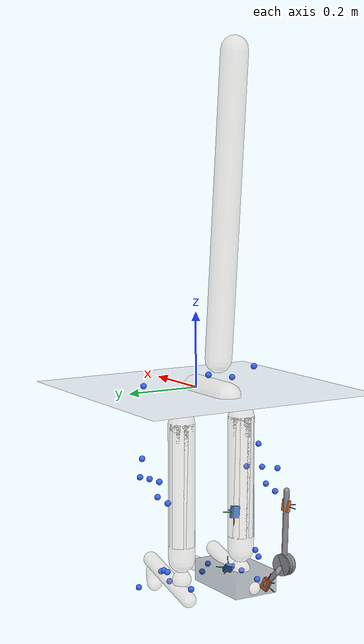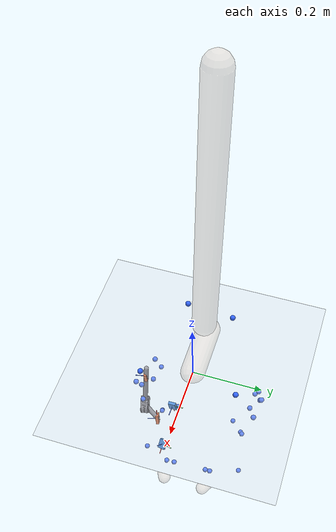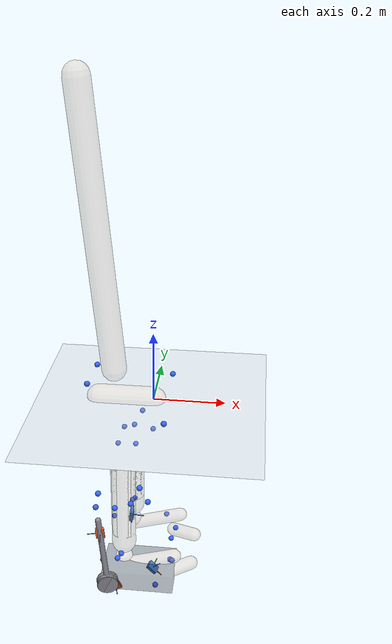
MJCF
<mujoco model="AB12">
  <compiler angle="radian" autolimits="true"/>
  <option timestep="0.005" gravity="0 0 -9.81"><flag contact="disable"/></option>
  <visual><global offwidth="1600" offheight="1200"/>
    <headlight ambient="0.55 0.55 0.55" diffuse="0.6 0.6 0.6"/></visual>
  <default><joint limited="false" damping="0"/><geom contype="0" conaffinity="0"/></default>
  <asset>
    <texture name="grid" type="2d" builtin="checker" rgb1="0.75 0.77 0.8" rgb2="0.85 0.87 0.9" width="512" height="512"/>
    <material name="grid" texture="grid" texrepeat="2 2" texuniform="true"/>
    <material name="skin" rgba="0.85 0.72 0.62 0.28"/>
  </asset>
  <worldbody>
    <light pos="0 0 4" dir="0 0 -1"/>
    <geom name="floor" type="plane" size="0 0 0.05" material="grid"/>
    <body name="pelvis" pos="0 0 0" quat="1 0 0 0">
      <joint name="pelvis_tx" type="slide" axis="1 0 0"/>
      <joint name="pelvis_ty" type="slide" axis="0 0 1"/>
      <joint name="pelvis_tz" type="slide" axis="0 -1 0"/>
      <joint name="pelvis_tilt" type="hinge" axis="0 -1 0"/>
      <joint name="pelvis_list" type="hinge" axis="1 0 0"/>
      <joint name="pelvis_rotation" type="hinge" axis="0 0 1"/>
      <inertial pos="-0.07715443 0 0" mass="14.0995" diaginertia="0.1409953 0.1409953 0.1409953"/>
      <geom type="capsule" fromto="0 0 0 -0.15430886 0 0" size="0.035" material="skin" mass="0"/>
      <site name="m_R_ASIS" pos="0.043983558 -0.14042451 0.0079280897" size="0.008" rgba="0.2 0.4 1 1" group="2"/>
      <site name="m_L_ASIS" pos="0.03976202 0.13610906 0.0093968078" size="0.008" rgba="0.2 0.4 1 1" group="2"/>
      <site name="m_L_PSIS" pos="-0.17033941 0.067238765 0.063340387" size="0.008" rgba="0.2 0.4 1 1" group="2"/>
      <site name="m_R_PSIS" pos="-0.17360342 -0.066975278 0.074198907" size="0.008" rgba="0.2 0.4 1 1" group="2"/>
      <body name="femur_r" pos="-0.07715443 -0.091122983 -0.072134482" quat="1 0 0 0">
        <joint name="hip_flexion_r" type="hinge" axis="0 -1 0"/>
        <joint name="hip_adduction_r" type="hinge" axis="1 0 0"/>
        <joint name="hip_rotation_r" type="hinge" axis="0 0 1"/>
        <inertial pos="0 0 -0.16202435" mass="11.1357" diaginertia="0.11135719 0.11135719 0.11135719"/>
        <geom type="capsule" fromto="0 0 0 0 0 -0.3240487" size="0.035" material="skin" mass="0"/>
        <site name="m_R_Thigh_Upper" pos="0.061456934 -0.096307225 -0.098305812" size="0.008" rgba="0.2 0.4 1 1" group="2"/>
        <site name="m_R_Thigh_Front" pos="0.080273714 -0.070749892 -0.16125976" size="0.008" rgba="0.2 0.4 1 1" group="2"/>
        <site name="m_R_Thigh_Rear" pos="0.035883593 -0.091401105 -0.15639493" size="0.008" rgba="0.2 0.4 1 1" group="2"/>
        <site name="m_R_Knee_Lat" pos="-0.0018658824 -0.045486738 -0.37072767" size="0.008" rgba="0.2 0.4 1 1" group="2"/>
        <body name="tibia_r" pos="0 0 0" quat="1 0 0 0">
<geom name="gt_shank_axis_x" type="capsule" size="0.0012" fromto="0.02330 0.00370 -0.26510 0.02142 0.00816 -0.29976" rgba="1 0.1 0.1 1" contype="0" conaffinity="0" mass="0"/>
<geom name="gt_shank_axis_y" type="capsule" size="0.0012" fromto="0.02330 0.00370 -0.26510 0.02447 0.03840 -0.26070" rgba="0.1 0.8 0.1 1" contype="0" conaffinity="0" mass="0"/>
<geom name="gt_shank_axis_z" type="capsule" size="0.0012" fromto="0.02330 0.00370 -0.26510 0.05823 0.00278 -0.26712" rgba="0.1 0.3 1 1" contype="0" conaffinity="0" mass="0"/>
<geom name="exo_shank_axis_x" type="capsule" size="0.0012" fromto="-0.04844 -0.11237 -0.24755 -0.05066 -0.11583 -0.21279" rgba="1 0.1 0.1 1" contype="0" conaffinity="0" mass="0"/>
<geom name="exo_shank_axis_y" type="capsule" size="0.0012" fromto="-0.04844 -0.11237 -0.24755 -0.08287 -0.11802 -0.25030" rgba="0.1 0.8 0.1 1" contype="0" conaffinity="0" mass="0"/>
<geom name="exo_shank_axis_z" type="capsule" size="0.0012" fromto="-0.04844 -0.11237 -0.24755 -0.04256 -0.14674 -0.25059" rgba="0.1 0.3 1 1" contype="0" conaffinity="0" mass="0"/>
<geom name="encoder_shank" type="cylinder" size="0.03 0.012" fromto="-0.02795 -0.13179 -0.41510 -0.03245 -0.10821 -0.41510" rgba="0.55 0.55 0.58 1" contype="0" conaffinity="0" mass="0"/>
<geom name="strut_shank" type="capsule" size="0.008" fromto="-0.03020 -0.12000 -0.41510 -0.05300 -0.11047 -0.20566" rgba="0.55 0.55 0.58 1" contype="0" conaffinity="0" mass="0"/>
          <joint name="knee_r_translation1" type="slide" axis="1 0 0"/>
          <joint name="knee_r_translation2" type="slide" axis="0 0 1"/>
          <joint name="knee_angle_r" type="hinge" axis="0 -1 0"/>
          <inertial pos="0 0 -0.18022266" mass="4.43865" diaginertia="0.044386521 0.044386521 0.044386521"/>
          <geom type="capsule" fromto="0 0 0 0 0 -0.36044532" size="0.035" material="skin" mass="0"/>
          <site name="m_R_Shank_Upper" pos="-0.056617927 -0.077858928 -0.13979234" size="0.008" rgba="0.2 0.4 1 1" group="2"/>
          <site name="m_R_Shank_Front" pos="-0.012494069 -0.07136398 -0.19007319" size="0.008" rgba="0.2 0.4 1 1" group="2"/>
          <site name="m_R_Shank_Rear" pos="-0.067992096 -0.063246749 -0.19796673" size="0.008" rgba="0.2 0.4 1 1" group="2"/>
          <site name="m_R_Ankle_Lat" pos="-0.012331908 -0.048676994 -0.38698229" size="0.008" rgba="0.2 0.4 1 1" group="2"/>
          <site name="gt_shank_imu" type="box" size="0.016 0.012 0.005" pos="0.0233 0.0037 -0.2651" quat="0.68558164 0.055505595 0.72506702 0.034274681" rgba="0.16 0.47 0.84 1" group="1"/>
          <site name="exo_shank_imu" type="box" size="0.016 0.012 0.005" pos="-0.04844 -0.112374 -0.247546" quat="0.41486667 0.54424053 -0.49726016 0.53331063" rgba="0.92 0.41 0.20 1" group="1"/>
          <body name="talus_r" pos="0 0 -0.41508164" quat="1 0 0 0">
            <joint name="ankle_angle_r" type="hinge" axis="-0.10501355 -0.97912632 -0.17402245"/>
            <inertial pos="0 0 0" mass="0.119721" diaginertia="0.0011972089 0.0011972089 0.0011972089"/>
            <geom type="sphere" size="0.025" material="skin" mass="0"/>
            <body name="calcn_r" pos="-0.047077981 -0.0076452247 -0.040494593" quat="1 0 0 0">
<geom name="gt_foot_axis_x" type="capsule" size="0.0012" fromto="0.13330 -0.00930 0.01720 0.15877 -0.01163 -0.00669" rgba="1 0.1 0.1 1" contype="0" conaffinity="0" mass="0"/>
<geom name="gt_foot_axis_y" type="capsule" size="0.0012" fromto="0.13330 -0.00930 0.01720 0.14217 0.02398 0.02340" rgba="0.1 0.8 0.1 1" contype="0" conaffinity="0" mass="0"/>
<geom name="gt_foot_axis_z" type="capsule" size="0.0012" fromto="0.13330 -0.00930 0.01720 0.15561 -0.01987 0.04201" rgba="0.1 0.3 1 1" contype="0" conaffinity="0" mass="0"/>
<geom name="exo_foot_axis_x" type="capsule" size="0.0012" fromto="0.03192 -0.06352 -0.01095 0.01898 -0.07073 0.02076" rgba="1 0.1 0.1 1" contype="0" conaffinity="0" mass="0"/>
<geom name="exo_foot_axis_y" type="capsule" size="0.0012" fromto="0.03192 -0.06352 -0.01095 0.00060 -0.06993 -0.02519" rgba="0.1 0.8 0.1 1" contype="0" conaffinity="0" mass="0"/>
<geom name="exo_foot_axis_z" type="capsule" size="0.0012" fromto="0.03192 -0.06352 -0.01095 0.04066 -0.09717 -0.01503" rgba="0.1 0.3 1 1" contype="0" conaffinity="0" mass="0"/>
<geom name="encoder_foot" type="cylinder" size="0.03 0.012" fromto="0.02047 -0.12384 0.03982 0.01333 -0.10096 0.04118" rgba="0.55 0.55 0.58 1" contype="0" conaffinity="0" mass="0"/>
<geom name="strut_foot" type="capsule" size="0.008" fromto="0.01690 -0.11240 0.04050 0.03192 -0.06352 -0.01095" rgba="0.55 0.55 0.58 1" contype="0" conaffinity="0" mass="0"/>
<geom name="shoe" type="box" pos="0.09404 -0.00528 0.00813" size="0.10311 0.06386 0.03000" rgba="0.15 0.15 0.18 0.35" contype="0" conaffinity="0" mass="0"/>
              <joint name="subtalar_angle_r" type="hinge" axis="0.78717961 0.12094949 0.60474746"/>
              <inertial pos="0.097795149 0 0.029338545" mass="1.49651" diaginertia="0.014965112 0.014965112 0.014965112"/>
              <geom type="capsule" fromto="0 0 0 0.1955903 0 0.058677089" size="0.02" material="skin" mass="0"/>
              <site name="m_R_Heel" pos="-0.016078069 -0.0034835804 0.026161224" size="0.008" rgba="0.2 0.4 1 1" group="2"/>
              <site name="m_R_Toe_Lat" pos="0.14725056 -0.060948239 -0.0018715595" size="0.008" rgba="0.2 0.4 1 1" group="2"/>
              <site name="m_R_Toe_Med" pos="0.17908964 0.046779981 0.003740019" size="0.008" rgba="0.2 0.4 1 1" group="2"/>
              <site name="m_R_Toe_Tip" pos="0.18715187 0.023664384 0.020267258" size="0.008" rgba="0.2 0.4 1 1" group="2"/>
              <site name="gt_foot_imu" type="box" size="0.016 0.012 0.005" pos="0.1333 -0.0093 0.0172" quat="0.92028364 0.13012564 0.35858456 -0.086962366" rgba="0.16 0.47 0.84 1" group="1"/>
              <site name="exo_foot_imu" type="box" size="0.016 0.012 0.005" pos="0.031924 -0.063524 -0.010954" quat="0.28756144 0.4821127 -0.57080915 0.59921004" rgba="0.92 0.41 0.20 1" group="1"/>
              <body name="toes_r" pos="0.17485773 -0.0010561876 -0.001955903" quat="1 0 0 0">
                <joint name="mtp_angle_r" type="hinge" axis="-0.5809544 -0.81393611 0"/>
                <inertial pos="0.033837122 0.017114151 0.0058677089" mass="0.259315" diaginertia="0.0025931546 0.0025931546 0.0025931546"/>
                <geom type="capsule" fromto="0 0 0 0.067674243 0.034228302 0.011735418" size="0.02" material="skin" mass="0"/>
              </body>
            </body>
          </body>
        </body>
      </body>
      <body name="femur_l" pos="-0.07715443 0.091122983 -0.072134482" quat="1 0 0 0">
        <joint name="hip_flexion_l" type="hinge" axis="0 -1 0"/>
        <joint name="hip_adduction_l" type="hinge" axis="-1 0 0"/>
        <joint name="hip_rotation_l" type="hinge" axis="0 0 -1"/>
        <inertial pos="0 0 -0.16202435" mass="11.1357" diaginertia="0.11135719 0.11135719 0.11135719"/>
        <geom type="capsule" fromto="0 0 0 0 0 -0.3240487" size="0.035" material="skin" mass="0"/>
        <site name="m_L_Thigh_Upper" pos="0.018322348 0.10535582 -0.085251929" size="0.008" rgba="0.2 0.4 1 1" group="2"/>
        <site name="m_L_Thigh_Front" pos="0.052304428 0.093149921 -0.14183419" size="0.008" rgba="0.2 0.4 1 1" group="2"/>
        <site name="m_L_Thigh_Rear" pos="-0.0069196455 0.098419093 -0.13371517" size="0.008" rgba="0.2 0.4 1 1" group="2"/>
        <site name="m_L_Knee_Lat" pos="-0.0017085929 0.05416158 -0.38128089" size="0.008" rgba="0.2 0.4 1 1" group="2"/>
        <body name="tibia_l" pos="0 0 0" quat="1 0 0 0">
          <joint name="knee_l_translation1" type="slide" axis="1 0 0"/>
          <joint name="knee_l_translation2" type="slide" axis="0 0 1"/>
          <joint name="knee_angle_l" type="hinge" axis="0 -1 0"/>
          <inertial pos="0 0 -0.18022266" mass="4.43865" diaginertia="0.044386521 0.044386521 0.044386521"/>
          <geom type="capsule" fromto="0 0 0 0 0 -0.36044532" size="0.035" material="skin" mass="0"/>
          <site name="m_L_Shank_Upper" pos="-0.036793303 0.086908038 -0.13628313" size="0.008" rgba="0.2 0.4 1 1" group="2"/>
          <site name="m_L_Shank_Front" pos="0.00065718824 0.071011716 -0.18609703" size="0.008" rgba="0.2 0.4 1 1" group="2"/>
          <site name="m_L_Shank_Rear" pos="-0.055466431 0.073235348 -0.18973282" size="0.008" rgba="0.2 0.4 1 1" group="2"/>
          <site name="m_L_Ankle_Lat" pos="-0.0088468919 0.048177175 -0.38478184" size="0.008" rgba="0.2 0.4 1 1" group="2"/>
          <body name="talus_l" pos="0 0 -0.41508164" quat="1 0 0 0">
            <joint name="ankle_angle_l" type="hinge" axis="0.10501355 -0.97912632 0.17402245"/>
            <inertial pos="0 0 0" mass="0.119721" diaginertia="0.0011972089 0.0011972089 0.0011972089"/>
            <geom type="sphere" size="0.025" material="skin" mass="0"/>
            <body name="calcn_l" pos="-0.047077981 0.0076452247 -0.040494593" quat="1 0 0 0">
              <joint name="subtalar_angle_l" type="hinge" axis="-0.78717961 0.12094949 -0.60474746"/>
              <inertial pos="0.097795149 0 0.029338545" mass="1.49651" diaginertia="0.014965112 0.014965112 0.014965112"/>
              <geom type="capsule" fromto="0 0 0 0.1955903 0 0.058677089" size="0.02" material="skin" mass="0"/>
              <site name="m_L_Heel" pos="-0.014810252 0.0011010352 0.032700384" size="0.008" rgba="0.2 0.4 1 1" group="2"/>
              <site name="m_L_Toe_Lat" pos="0.14557215 0.065347425 0.0052133203" size="0.008" rgba="0.2 0.4 1 1" group="2"/>
              <site name="m_L_Toe_Med" pos="0.1717439 -0.043125119 -0.003464189" size="0.008" rgba="0.2 0.4 1 1" group="2"/>
              <site name="m_L_Toe_Tip" pos="0.18351315 -0.024331829 0.023826383" size="0.008" rgba="0.2 0.4 1 1" group="2"/>
              <body name="toes_l" pos="0.17485773 0.0010561876 -0.001955903" quat="1 0 0 0">
                <joint name="mtp_angle_l" type="hinge" axis="0.5809544 -0.81393611 0"/>
                <inertial pos="0.033837122 -0.017114151 0.0058677089" mass="0.259315" diaginertia="0.0025931546 0.0025931546 0.0025931546"/>
                <geom type="capsule" fromto="0 0 0 0.067674243 -0.034228302 0.011735418" size="0.02" material="skin" mass="0"/>
              </body>
            </body>
          </body>
        </body>
      </body>
      <body name="torso" pos="-0.10989323 0 0.088940397" quat="1 0 0 0">
        <joint name="lumbar_extension" type="hinge" axis="0 -1 0"/>
        <joint name="lumbar_bending" type="hinge" axis="1 0 0"/>
        <joint name="lumbar_rotation" type="hinge" axis="0 0 1"/>
        <inertial pos="-0.036463131 0 0.38894007" mass="40.9884" diaginertia="0.40988364 0.40988364 0.40988364"/>
        <geom type="capsule" fromto="0 0 0 -0.072926263 0 0.77788014" size="0.035" material="skin" mass="0"/>
      </body>
    </body>
  </worldbody>
  <sensor>
<accelerometer name="gt_foot_imu_acc" site="gt_foot_imu"/>
<gyro name="gt_foot_imu_gyr" site="gt_foot_imu"/>
<accelerometer name="exo_foot_imu_acc" site="exo_foot_imu"/>
<gyro name="exo_foot_imu_gyr" site="exo_foot_imu"/>
<accelerometer name="gt_shank_imu_acc" site="gt_shank_imu"/>
<gyro name="gt_shank_imu_gyr" site="gt_shank_imu"/>
<accelerometer name="exo_shank_imu_acc" site="exo_shank_imu"/>
<gyro name="exo_shank_imu_gyr" site="exo_shank_imu"/>
</sensor>
</mujoco>
